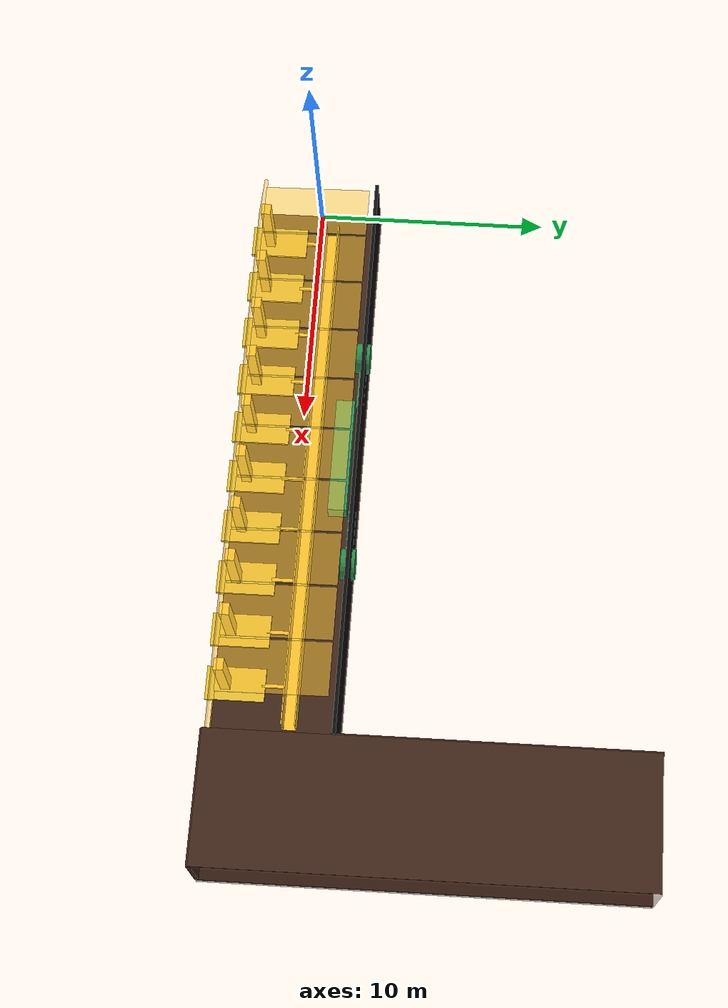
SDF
<?xml version="1.0" ?>
<sdf version="1.6">
  <world name="longwall_realistic">

    <!-- Lighting -->
    <include>
      <uri>model://sun</uri>
    </include>

    <!-- Floor -->
    <model name="floor">
      <static>true</static>
      <link name="link">
        <visual name="visual">
          <geometry><box><size>25 5.4 0.2</size></box></geometry>
          <material><diffuse>0.25 0.15 0.1 1</diffuse></material>
        </visual>
        <collision name="collision">
          <geometry><box><size>25 5.4 0.2</size></box></geometry>
        </collision>
        <pose>12.5 0 -0.1 0 0 0</pose>
      </link>
    </model>

    <!-- Perpendicular tunnel (same dimensions, perpendicular to main, ending at mining face) -->
    <model name="floor_perp">
      <static>true</static>
      <link name="link">
        <visual name="visual">
          <geometry><box><size>5.4 18.0 0.2</size></box></geometry>
          <material><diffuse>0.25 0.15 0.1 1</diffuse></material>
        </visual>
        <collision name="collision">
          <geometry><box><size>5.4 18.0 0.2</size></box></geometry>
        </collision>
        <!-- spans 18 m perpendicular starting at support-side wall (y≈-2.575) toward/through the face -->
        <pose>27.5 6.425 -0.1 0 0 0</pose>
      </link>
    </model>
    <!-- Interior block inside the perpendicular tunnel -->
    <model name="perp_inner_block">
      <static>true</static>
      <link name="link">
        <visual name="visual">
          <geometry><box><size>3.0 6.0 1.75</size></box></geometry>
          <material><diffuse>1.0 0.78 0.2 1</diffuse></material>
        </visual>
        <collision name="collision">
          <geometry><box><size>3.0 6.0 1.75</size></box></geometry>
        </collision>
        <!-- centered in tunnel cross-section, resting on floor -->
        <pose>27.5 6.425 0.875 0 0 0</pose>
      </link>
    </model>
    <model name="roof_perp">
      <static>true</static>
      <link name="link">
        <visual name="visual">
          <geometry><box><size>5.4 18.0 0.05</size></box></geometry>
          <material><diffuse>0.25 0.15 0.1 1</diffuse></material>
        </visual>
        <collision name="collision">
          <geometry><box><size>5.4 18.0 0.05</size></box></geometry>
        </collision>
        <pose>27.5 6.425 3.05 0 0 0</pose>
      </link>
    </model>
    <model name="side_wall_perp_left">
      <static>true</static>
      <link name="link">
        <visual name="visual">
          <geometry><box><size>0.15 18.0 3</size></box></geometry>
          <material>
            <diffuse>0.25 0.15 0.1 0.4</diffuse>
            <ambient>0.25 0.15 0.1 0.4</ambient>
          </material>
          <transparency>0.6</transparency>
        </visual>
        <collision name="collision">
          <geometry><box><size>0.15 18.0 3</size></box></geometry>
        </collision>
        <pose>30.2 6.425 1.5 0 0 0</pose>
      </link>
    </model>
    <model name="side_wall_perp_right">
      <static>true</static>
      <link name="link">
        <visual name="visual">
          <geometry><box><size>0.15 13 3</size></box></geometry>
          <material><diffuse>0.25 0.15 0.1 1</diffuse></material>

        </visual>
        <collision name="collision">
          <geometry><box><size>0.15 13 3</size></box></geometry>
        </collision>
        <pose>24.8 8.975 1.5 0 0 0</pose>
      </link>
    </model>

    <!-- Continuous basket/tray along the tunnel (hollow via thin walls) -->
    <model name="basket_tray">
      <static>true</static>
      <!-- Base sits on floor (z≈0), hollow walls 0.05 m thick -->
      <pose>12.5 0.575 0.025 0 0 0</pose>
      <link name="tray">
        <!-- bottom -->
        <visual name="bottom_visual">
          <geometry><box><size>23 0.5 0.05</size></box></geometry>
          <material><diffuse>1.0 0.78 0.2 1</diffuse></material>
        </visual>
        <collision name="bottom_collision">
          <geometry><box><size>23 0.5 0.05</size></box></geometry>
        </collision>
        <!-- side left -->
        <visual name="side_left_visual">
          <pose>0 0.275 0.525 0 0 0</pose>
          <geometry><box><size>23 0.05 1.0</size></box></geometry>
          <material><diffuse>1.0 0.78 0.2 1</diffuse></material>
        </visual>
        <collision name="side_left_collision">
          <pose>0 0.275 0.525 0 0 0</pose>
          <geometry><box><size>23 0.05 1.0</size></box></geometry>
        </collision>
        <!-- side right -->
        <visual name="side_right_visual">
          <pose>0 -0.275 0.525 0 0 0</pose>
          <geometry><box><size>23 0.05 1.0</size></box></geometry>
          <material><diffuse>1.0 0.78 0.2 1</diffuse></material>
        </visual>
        <collision name="side_right_collision">
          <pose>0 -0.275 0.525 0 0 0</pose>
          <geometry><box><size>23 0.05 1.0</size></box></geometry>
        </collision>
      </link>
    </model>
    <model name="end_cap_perp_support">
      <static>true</static>
      <link name="link">
        <visual name="visual">
          <geometry><box><size>5.4 0.15 3</size></box></geometry>
          <material><diffuse>0.25 0.15 0.1 1</diffuse></material>
        </visual>
        <collision name="collision">
          <geometry><box><size>5.4 0.15 3</size></box></geometry>
        </collision>
        <pose>27.5 -2.575 1.5 0 0 0</pose>
      </link>
    </model>

    <!-- Roof segments with small gaps, stopping 0.3 m before the mining face -->
    <!-- Segment length ~2.2 m with ~0.1 m gaps; width gives 0.3 m clearance to face -->
    <model name="roof_seg_0">
      <static>true</static>
      <link name="link">
        <visual name="visual">
          <geometry><box><size>2.2 4.55 0.05</size></box></geometry>
          <material><diffuse>1.0 0.78 0.2 0.5</diffuse></material>
        </visual>
        <collision name="collision">
          <geometry><box><size>2.2 4.55 0.05</size></box></geometry>
        </collision>
        <pose>1.5 0 3.05  0.03 0 0</pose>
      </link>
    </model>
    <model name="roof_seg_1">
      <static>true</static>
      <link name="link">
        <visual name="visual">
          <geometry><box><size>2.2 4.55 0.05</size></box></geometry>
          <material><diffuse>1.0 0.78 0.2 0.5</diffuse></material>
        </visual>
        <collision name="collision">
          <geometry><box><size>2.2 4.55 0.05</size></box></geometry>
        </collision>
        <pose>3.8 0 3.05  0.03 0 0</pose>
      </link>
    </model>
    <model name="roof_seg_2">
      <static>true</static>
      <link name="link">
        <visual name="visual">
          <geometry><box><size>2.2 4.55 0.05</size></box></geometry>
          <material><diffuse>1.0 0.78 0.2 0.5</diffuse></material>
        </visual>
        <collision name="collision">
          <geometry><box><size>2.2 4.55 0.05</size></box></geometry>
        </collision>
        <pose>6.1 0 3.05  0.03 0 0</pose>
      </link>
    </model>
    <model name="roof_seg_3">
      <static>true</static>
      <link name="link">
        <visual name="visual">
          <geometry><box><size>2.2 4.55 0.05</size></box></geometry>
          <material><diffuse>1.0 0.78 0.2 0.5</diffuse></material>
        </visual>
        <collision name="collision">
          <geometry><box><size>2.2 4.55 0.05</size></box></geometry>
        </collision>
        <pose>8.4 0 3.05  0.03 0 0</pose>
      </link>
    </model>
    <model name="roof_seg_4">
      <static>true</static>
      <link name="link">
        <visual name="visual">
          <geometry><box><size>2.2 4.55 0.05</size></box></geometry>
          <material><diffuse>1.0 0.78 0.2 0.5</diffuse></material>
        </visual>
        <collision name="collision">
          <geometry><box><size>2.2 4.55 0.05</size></box></geometry>
        </collision>
        <pose>10.7 0 3.05  0.03 0 0</pose>
      </link>
    </model>
    <model name="roof_seg_5">
      <static>true</static>
      <link name="link">
        <visual name="visual">
          <geometry><box><size>2.2 4.55 0.05</size></box></geometry>
          <material><diffuse>1.0 0.78 0.2 0.5</diffuse></material>
        </visual>
        <collision name="collision">
          <geometry><box><size>2.2 4.55 0.05</size></box></geometry>
        </collision>
        <pose>13.0 0 3.05  0.03 0 0</pose>
      </link>
    </model>
    <model name="roof_seg_6">
      <static>true</static>
      <link name="link">
        <visual name="visual">
          <geometry><box><size>2.2 4.55 0.05</size></box></geometry>
          <material><diffuse>1.0 0.78 0.2 0.5</diffuse></material>
        </visual>
        <collision name="collision">
          <geometry><box><size>2.2 4.55 0.05</size></box></geometry>
        </collision>
        <pose>15.3 0 3.05  0.03 0 0</pose>
      </link>
    </model>
    <model name="roof_seg_7">
      <static>true</static>
      <link name="link">
        <visual name="visual">
          <geometry><box><size>2.2 4.55 0.05</size></box></geometry>
          <material><diffuse>1.0 0.78 0.2 0.5</diffuse></material>
        </visual>
        <collision name="collision">
          <geometry><box><size>2.2 4.55 0.05</size></box></geometry>
        </collision>
        <pose>17.6 0 3.05  0.03 0 0</pose>
      </link>
    </model>
    <model name="roof_seg_8">
      <static>true</static>
      <link name="link">
        <visual name="visual">
          <geometry><box><size>2.2 4.55 0.05</size></box></geometry>
          <material><diffuse>1.0 0.78 0.2 0.5</diffuse></material>
        </visual>
        <collision name="collision">
          <geometry><box><size>2.2 4.55 0.05</size></box></geometry>
        </collision>
        <pose>19.9 0 3.05  0.03 0 0</pose>
      </link>
    </model>
    <model name="roof_seg_9">
      <static>true</static>
      <link name="link">
        <visual name="visual">
          <geometry><box><size>2.2 4.55 0.05</size></box></geometry>
          <material><diffuse>1.0 0.78 0.2 0.5</diffuse></material>
        </visual>
        <collision name="collision">
          <geometry><box><size>2.2 4.55 0.05</size></box></geometry>
        </collision>
        <pose>22.2 0 3.05  0.03 0 0</pose>
      </link>
    </model>

    <!-- Mining face (straight, vertical, black) -->
    <model name="mining_face">
      <static>true</static>
      <link name="link">
        <visual name="visual">
          <geometry><box><size>25 0.15 3</size></box></geometry>
          <material>
            <diffuse>0.05 0.05 0.05 1</diffuse>
            <ambient>0.05 0.05 0.05 1</ambient>
          </material>
        </visual>
        <collision name="collision">
          <geometry><box><size>25 0.15 3</size></box></geometry>
        </collision>
        <pose>12.5 2.575 1.5 0 0 0</pose>
      </link>
    </model>

    <!-- Opposite wall, thinner and slanted toward the mining face, semi-transparent -->
    <model name="back_wall">
      <static>true</static>
      <link name="link">
        <visual name="visual">
          <geometry><box><size>25 0.15 3</size></box></geometry>
          <material><diffuse>1.0 0.78 0.2 0.5</diffuse></material>

        </visual>
        <collision name="collision">
          <geometry><box><size>25 0.15 3</size></box></geometry>
        </collision>
        <pose>12.5 -2.575 1.5 -0.1745 0 0</pose> <!-- roll -10 deg so top leans toward +y (face) -->
      </link>
    </model>

    <!-- Roof supports aligned along length, angled toward face with gaps -->
    <model name="roof_supports">
      <static>true</static>
      <pose>0 0 0 0 0 0</pose>
      <!-- Spaced ~2.3 m with small gaps; canopies set near face side with tilt -->
      <link name="support_0">
        <pose>1.5 -2.2 1.5 0 0 0</pose>
        <!-- leg -->
        <visual name="leg_visual">
          <geometry><box><size>0.5 0.4 3.0</size></box></geometry>
          <material><diffuse>1.0 0.78 0.2 1</diffuse></material>
        </visual>
        <collision name="leg_collision">
          <geometry><box><size>0.5 0.4 3.0</size></box></geometry>
        </collision>
        <!-- foot -->
        <visual name="foot_visual">
          <pose>0 0.4 -1.5 0 0 0</pose>
          <geometry><box><size>1.4 2.45 0.2</size></box></geometry>
          <material><diffuse>0.9 0.75 0.2 1</diffuse></material>
        </visual>
        <collision name="foot_collision">
          <pose>0 0.4 -1.5 0 0 0</pose>
          <geometry><box><size>1.4 2.45 0.2</size></box></geometry>
      </collision>
        <visual name="rod_visual">
          <pose>0 1.975 -1.5 0 0 0</pose>
          <geometry><box><size>0.15 1.0 0.2</size></box></geometry>
          <material><diffuse>1.0 0.78 0.2 1</diffuse></material>
        </visual>
        <collision name="rod_collision">
          <pose>0 1.975 -1.5 0 0 0</pose>
          <geometry><box><size>0.15 1.0 0.2</size></box></geometry>
        </collision>

      </link>
      <link name="support_1">
        <pose>3.8 -2.2 1.5 0 0 0</pose>
        <visual name="leg_visual">
          <geometry><box><size>0.5 0.4 3.0</size></box></geometry>
          <material><diffuse>1.0 0.78 0.2 1</diffuse></material>
        </visual>
        <collision name="leg_collision">
          <geometry><box><size>0.5 0.4 3.0</size></box></geometry>
        </collision>
        <visual name="foot_visual">
          <pose>0 0.4 -1.5 0 0 0</pose>
          <geometry><box><size>1.4 2.45 0.2</size></box></geometry>
          <material><diffuse>0.9 0.75 0.2 1</diffuse></material>
        </visual>
        <collision name="foot_collision">
          <pose>0 0.4 -1.5 0 0 0</pose>
          <geometry><box><size>1.4 2.45 0.2</size></box></geometry>
      </collision>
        <visual name="rod_visual">
          <pose>0 1.975 -1.5 0 0 0</pose>
          <geometry><box><size>0.15 1.0 0.2</size></box></geometry>
          <material><diffuse>1.0 0.78 0.2 1</diffuse></material>
        </visual>
        <collision name="rod_collision">
          <pose>0 1.975 -1.5 0 0 0</pose>
          <geometry><box><size>0.15 1.0 0.2</size></box></geometry>
        </collision>

      </link>
      <link name="support_2">
        <pose>6.1 -2.2 1.5 0 0 0</pose>
        <visual name="leg_visual">
          <geometry><box><size>0.5 0.4 3.0</size></box></geometry>
          <material><diffuse>1.0 0.78 0.2 1</diffuse></material>
        </visual>
        <collision name="leg_collision">
          <geometry><box><size>0.5 0.4 3.0</size></box></geometry>
        </collision>
        <visual name="foot_visual">
          <pose>0 0.4 -1.5 0 0 0</pose>
          <geometry><box><size>1.4 2.45 0.2</size></box></geometry>
          <material><diffuse>0.9 0.75 0.2 1</diffuse></material>
        </visual>
        <collision name="foot_collision">
          <pose>0 0.4 -1.5 0 0 0</pose>
          <geometry><box><size>1.4 2.45 0.2</size></box></geometry>
      </collision>
        <visual name="rod_visual">
          <pose>0 1.975 -1.5 0 0 0</pose>
          <geometry><box><size>0.15 1.0 0.2</size></box></geometry>
          <material><diffuse>1.0 0.78 0.2 1</diffuse></material>
        </visual>
        <collision name="rod_collision">
          <pose>0 1.975 -1.5 0 0 0</pose>
          <geometry><box><size>0.15 1.0 0.2</size></box></geometry>
        </collision>

      </link>
      <link name="support_3">
        <pose>8.4 -2.2 1.5 0 0 0</pose>
        <visual name="leg_visual">
          <geometry><box><size>0.5 0.4 3.0</size></box></geometry>
          <material><diffuse>1.0 0.78 0.2 1</diffuse></material>
        </visual>
        <collision name="leg_collision">
          <geometry><box><size>0.5 0.4 3.0</size></box></geometry>
        </collision>
        <visual name="foot_visual">
          <pose>0 0.4 -1.5 0 0 0</pose>
          <geometry><box><size>1.4 2.45 0.2</size></box></geometry>
          <material><diffuse>0.9 0.75 0.2 1</diffuse></material>
        </visual>
        <collision name="foot_collision">
          <pose>0 0.4 -1.5 0 0 0</pose>
          <geometry><box><size>1.4 2.45 0.2</size></box></geometry>
      </collision>
        <visual name="rod_visual">
          <pose>0 1.975 -1.5 0 0 0</pose>
          <geometry><box><size>0.15 1.0 0.2</size></box></geometry>
          <material><diffuse>1.0 0.78 0.2 1</diffuse></material>
        </visual>
        <collision name="rod_collision">
          <pose>0 1.975 -1.5 0 0 0</pose>
          <geometry><box><size>0.15 1.0 0.2</size></box></geometry>
        </collision>

      </link>
      <link name="support_4">
        <pose>10.7 -2.2 1.5 0 0 0</pose>
        <visual name="leg_visual">
          <geometry><box><size>0.5 0.4 3.0</size></box></geometry>
          <material><diffuse>1.0 0.78 0.2 1</diffuse></material>
        </visual>
        <collision name="leg_collision">
          <geometry><box><size>0.5 0.4 3.0</size></box></geometry>
        </collision>
        <visual name="foot_visual">
          <pose>0 0.4 -1.5 0 0 0</pose>
          <geometry><box><size>1.4 2.45 0.2</size></box></geometry>
          <material><diffuse>0.9 0.75 0.2 1</diffuse></material>
        </visual>
        <collision name="foot_collision">
          <pose>0 0.4 -1.5 0 0 0</pose>
          <geometry><box><size>1.4 2.45 0.2</size></box></geometry>
      </collision>
        <visual name="rod_visual">
          <pose>0 1.975 -1.5 0 0 0</pose>
          <geometry><box><size>0.15 1.0 0.2</size></box></geometry>
          <material><diffuse>1.0 0.78 0.2 1</diffuse></material>
        </visual>
        <collision name="rod_collision">
          <pose>0 1.975 -1.5 0 0 0</pose>
          <geometry><box><size>0.15 1.0 0.2</size></box></geometry>
        </collision>

      </link>
      <link name="support_5">
        <pose>13.0 -2.2 1.5 0 0 0</pose>
        <visual name="leg_visual">
          <geometry><box><size>0.5 0.4 3.0</size></box></geometry>
          <material><diffuse>1.0 0.78 0.2 1</diffuse></material>
        </visual>
        <collision name="leg_collision">
          <geometry><box><size>0.5 0.4 3.0</size></box></geometry>
        </collision>
        <visual name="foot_visual">
          <pose>0 0.4 -1.5 0 0 0</pose>
          <geometry><box><size>1.4 2.45 0.2</size></box></geometry>
          <material><diffuse>0.9 0.75 0.2 1</diffuse></material>
        </visual>
        <collision name="foot_collision">
          <pose>0 0.4 -1.5 0 0 0</pose>
          <geometry><box><size>1.4 2.45 0.2</size></box></geometry>
      </collision>
        <visual name="rod_visual">
          <pose>0 1.975 -1.5 0 0 0</pose>
          <geometry><box><size>0.15 1.0 0.2</size></box></geometry>
          <material><diffuse>1.0 0.78 0.2 1</diffuse></material>
        </visual>
        <collision name="rod_collision">
          <pose>0 1.975 -1.5 0 0 0</pose>
          <geometry><box><size>0.15 1.0 0.2</size></box></geometry>
        </collision>

      </link>
      <link name="support_6">
        <pose>15.3 -2.2 1.5 0 0 0</pose>
        <visual name="leg_visual">
          <geometry><box><size>0.5 0.4 3.0</size></box></geometry>
          <material><diffuse>1.0 0.78 0.2 1</diffuse></material>
        </visual>
        <collision name="leg_collision">
          <geometry><box><size>0.5 0.4 3.0</size></box></geometry>
        </collision>
        <visual name="foot_visual">
          <pose>0 0.4 -1.5 0 0 0</pose>
          <geometry><box><size>1.4 2.45 0.2</size></box></geometry>
          <material><diffuse>0.9 0.75 0.2 1</diffuse></material>
        </visual>
        <collision name="foot_collision">
          <pose>0 0.4 -1.5 0 0 0</pose>
          <geometry><box><size>1.4 2.45 0.2</size></box></geometry>
      </collision>
        <visual name="rod_visual">
          <pose>0 1.975 -1.5 0 0 0</pose>
          <geometry><box><size>0.15 1.0 0.2</size></box></geometry>
          <material><diffuse>1.0 0.78 0.2 1</diffuse></material>
        </visual>
        <collision name="rod_collision">
          <pose>0 1.975 -1.5 0 0 0</pose>
          <geometry><box><size>0.15 1.0 0.2</size></box></geometry>
        </collision>

      </link>
      <link name="support_7">
        <pose>17.6 -2.2 1.5 0 0 0</pose>
        <visual name="leg_visual">
          <geometry><box><size>0.5 0.4 3.0</size></box></geometry>
          <material><diffuse>1.0 0.78 0.2 1</diffuse></material>
        </visual>
        <collision name="leg_collision">
          <geometry><box><size>0.5 0.4 3.0</size></box></geometry>
        </collision>
        <visual name="foot_visual">
          <pose>0 0.4 -1.5 0 0 0</pose>
          <geometry><box><size>1.4 2.45 0.2</size></box></geometry>
          <material><diffuse>0.9 0.75 0.2 1</diffuse></material>
        </visual>
        <collision name="foot_collision">
          <pose>0 0.4 -1.5 0 0 0</pose>
          <geometry><box><size>1.4 2.45 0.2</size></box></geometry>
      </collision>
        <visual name="rod_visual">
          <pose>0 1.975 -1.5 0 0 0</pose>
          <geometry><box><size>0.15 1.0 0.2</size></box></geometry>
          <material><diffuse>1.0 0.78 0.2 1</diffuse></material>
        </visual>
        <collision name="rod_collision">
          <pose>0 1.975 -1.5 0 0 0</pose>
          <geometry><box><size>0.15 1.0 0.2</size></box></geometry>
        </collision>

      </link>
      <link name="support_8">
        <pose>19.9 -2.2 1.5 0 0 0</pose>
        <visual name="leg_visual">
          <geometry><box><size>0.5 0.4 3.0</size></box></geometry>
          <material><diffuse>1.0 0.78 0.2 1</diffuse></material>
        </visual>
        <collision name="leg_collision">
          <geometry><box><size>0.5 0.4 3.0</size></box></geometry>
        </collision>
        <visual name="foot_visual">
          <pose>0 0.4 -1.5 0 0 0</pose>
          <geometry><box><size>1.4 2.45 0.2</size></box></geometry>
          <material><diffuse>0.9 0.75 0.2 1</diffuse></material>
        </visual>
        <collision name="foot_collision">
          <pose>0 0.4 -1.5 0 0 0</pose>
          <geometry><box><size>1.4 2.45 0.2</size></box></geometry>
      </collision>
        <visual name="rod_visual">
          <pose>0 1.975 -1.5 0 0 0</pose>
          <geometry><box><size>0.15 1.0 0.2</size></box></geometry>
          <material><diffuse>1.0 0.78 0.2 1</diffuse></material>
        </visual>
        <collision name="rod_collision">
          <pose>0 1.975 -1.5 0 0 0</pose>
          <geometry><box><size>0.15 1.0 0.2</size></box></geometry>
        </collision>

      </link>
      <link name="support_9">
        <pose>22.2 -2.2 1.5 0 0 0</pose>
        <visual name="leg_visual">
          <geometry><box><size>0.5 0.4 3.0</size></box></geometry>
          <material><diffuse>1.0 0.78 0.2 1</diffuse></material>
        </visual>
        <collision name="leg_collision">
          <geometry><box><size>0.5 0.4 3.0</size></box></geometry>
        </collision>
        <visual name="foot_visual">
          <pose>0 0.4 -1.5 0 0 0</pose>
          <geometry><box><size>1.4 2.45 0.2</size></box></geometry>
          <material><diffuse>0.9 0.75 0.2 1</diffuse></material>
        </visual>
        <collision name="foot_collision">
          <pose>0 0.4 -1.5 0 0 0</pose>
          <geometry><box><size>1.4 2.45 0.2</size></box></geometry>
      </collision>
        <visual name="rod_visual">
          <pose>0 1.975 -1.5 0 0 0</pose>
          <geometry><box><size>0.15 1.0 0.2</size></box></geometry>
          <material><diffuse>1.0 0.78 0.2 1</diffuse></material>
        </visual>
        <collision name="rod_collision">
          <pose>0 1.975 -1.5 0 0 0</pose>
          <geometry><box><size>0.15 1.0 0.2</size></box></geometry>
        </collision>

      </link>
    </model>

    <!-- Shearer with mid boom and two cutting drums (one high, one low) -->
    <model name="shearer">
      <pose>12.5 1.9 0 0 0 0</pose>

      <!-- Main body housing -->
      <link name="body">
        <pose>0 0 1.5 0 0 0</pose>
        <visual name="visual">
          <geometry><box><size>5.0 0.8 0.8</size></box></geometry>
          <material><diffuse>0.18 0.55 0.35 1</diffuse></material>
        </visual>
        <collision name="collision">
          <geometry><box><size>5.0 0.8 0.8</size></box></geometry>
      </collision>
      </link>

      <!-- Arms connecting boom to drums -->
      <link name="arm_front">
        <pose>-3.3 0.6 1.6 0 0 0</pose>
        <visual name="visual">
          <geometry><box><size>2.0 0.3 0.3</size></box></geometry>
          <material><diffuse>0.22 0.6 0.32 1</diffuse></material>
        </visual>
        <collision name="collision">
          <geometry><box><size>2.0 0.3 0.3</size></box></geometry>
      </collision>
      </link>
      <link name="arm_rear">
        <pose>3.3 0.6 1.2 0 0 0</pose>
        <visual name="visual">
          <geometry><box><size>2.0 0.3 0.3</size></box></geometry>
          <material><diffuse>0.22 0.6 0.32 1</diffuse></material>
        </visual>
        <collision name="collision">
          <geometry><box><size>2.0 0.3 0.3</size></box></geometry>
      </collision>
      </link>

      <!-- Front drum high -->
      <link name="cutting_drum_front">
        <pose>-4.6 0.6 1.7 1.5708 0 0</pose>
        <visual name="drum_visual">
          <geometry><cylinder><radius>0.65</radius><length>0.6</length></cylinder></geometry>
          <material><diffuse>0.16 0.55 0.28 1</diffuse></material>
        </visual>
        <collision name="collision">
          <geometry><cylinder><radius>0.65</radius><length>0.6</length></cylinder></geometry>
      </collision>
      </link>

      <!-- Rear drum low -->
      <link name="cutting_drum_rear">
        <pose>4.6 0.6 1.1 1.5708 0 0</pose>
        <visual name="drum_visual">
          <geometry><cylinder><radius>0.65</radius><length>0.6</length></cylinder></geometry>
          <material><diffuse>0.16 0.55 0.28 1</diffuse></material>
        </visual>
        <collision name="collision">
          <geometry><cylinder><radius>0.65</radius><length>0.6</length></cylinder></geometry>
      </collision>
      </link>
    </model>

  </world>
</sdf>
